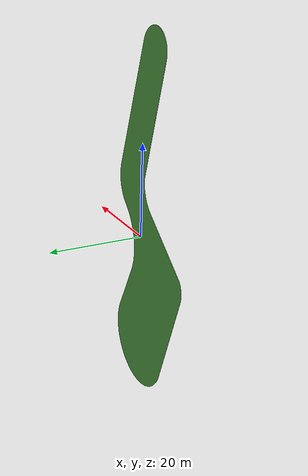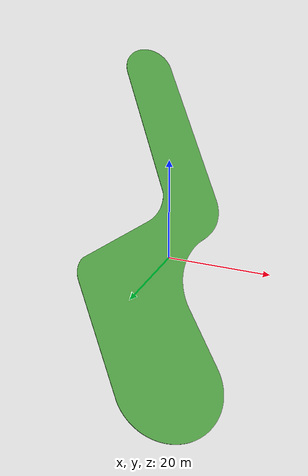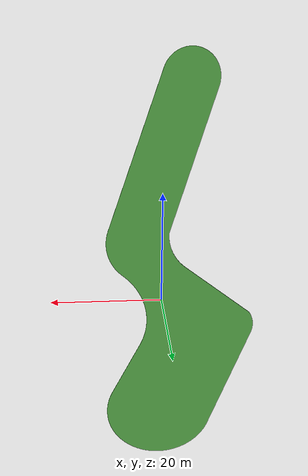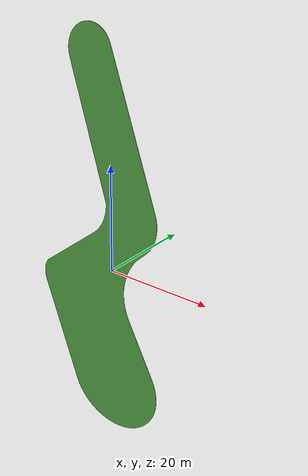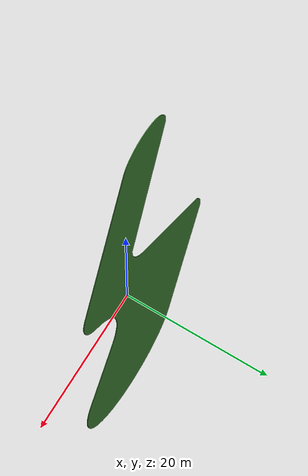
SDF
<?xml version='1.0'?>
<sdf version='1.6'>
  <model name="grass1">
    <static>true</static>
    <pose>0 0 0 0 0 0</pose>

    <link name="grass1">
      <pose>0 0 0 0 0 0</pose>
      <visual name="grass">
           <material>
            <script>
                <uri>model://grass1/materials/scripts</uri>
                <uri>model://grass1/materials/textures</uri>
                <name>vrc/grass</name>
            </script>
        </material>
        <geometry>
          <mesh>
            <uri>model://grass1/meshes/RT1_Grass.dae</uri>
          </mesh>
        </geometry>
      </visual>
      <collision name="grass">
        <geometry>
          <mesh>
            <uri>model://grass1/meshes/RT1_Grass.dae</uri>
          </mesh>
        </geometry>
      </collision>
    </link>

  </model>
</sdf>
